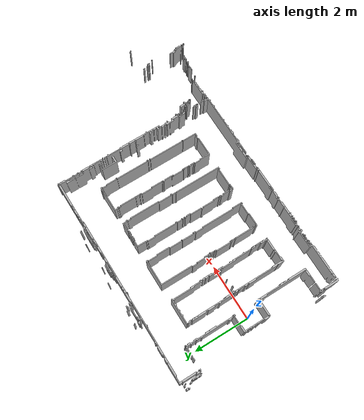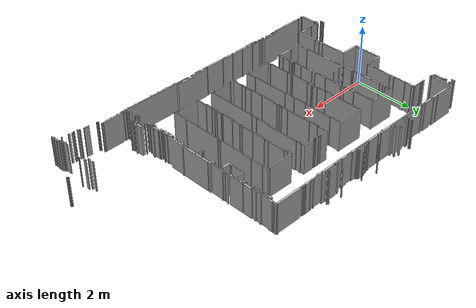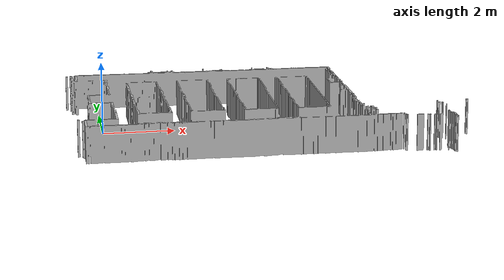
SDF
<?xml version="1.0" ?>
<sdf version="1.6">
  <model name="nav_map">
    <static>true</static>
    <link name="link">

      <collision name="collision">
        <pose>0 0 0 0 0 0</pose>
        <geometry>
          <mesh>
            <uri>model://nav_map/meshes/nav_map.stl</uri>
          </mesh>
        </geometry>
      </collision>

      <visual name="visual">
        <pose>0 0 0 0 0 0</pose>
        <geometry>
          <mesh>
            <uri>model://nav_map/meshes/nav_map.stl</uri>
          </mesh>
        </geometry>
      </visual>

    </link>
  </model>
</sdf>
